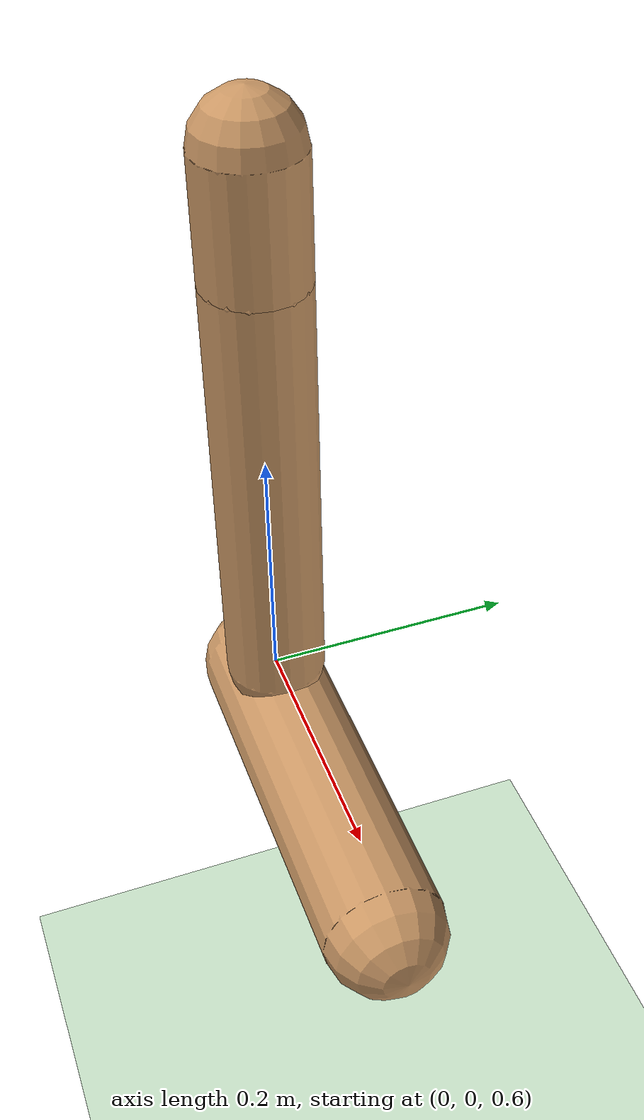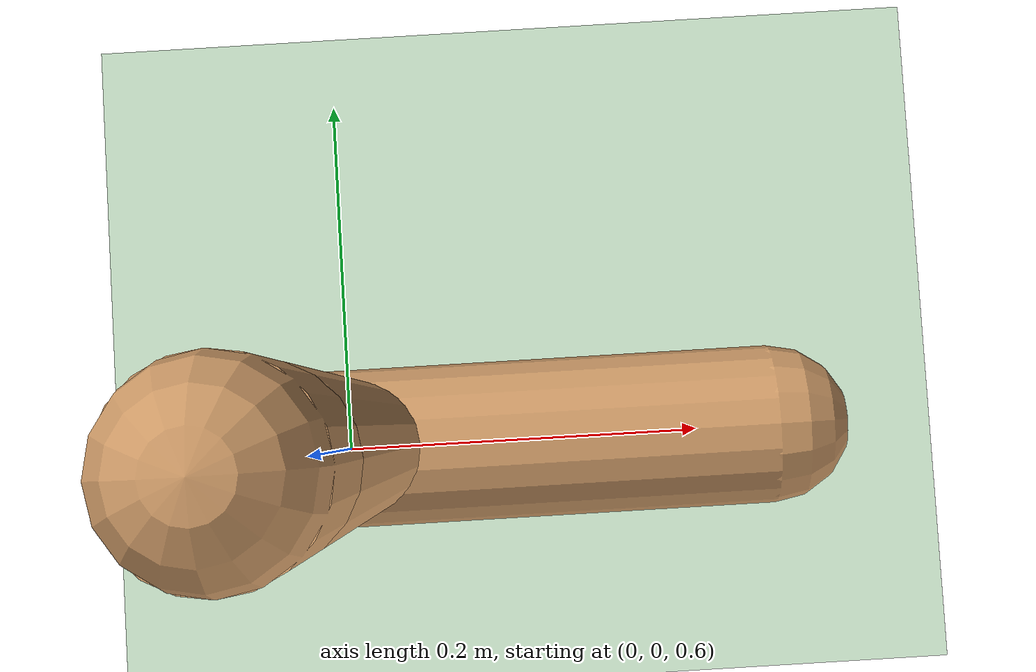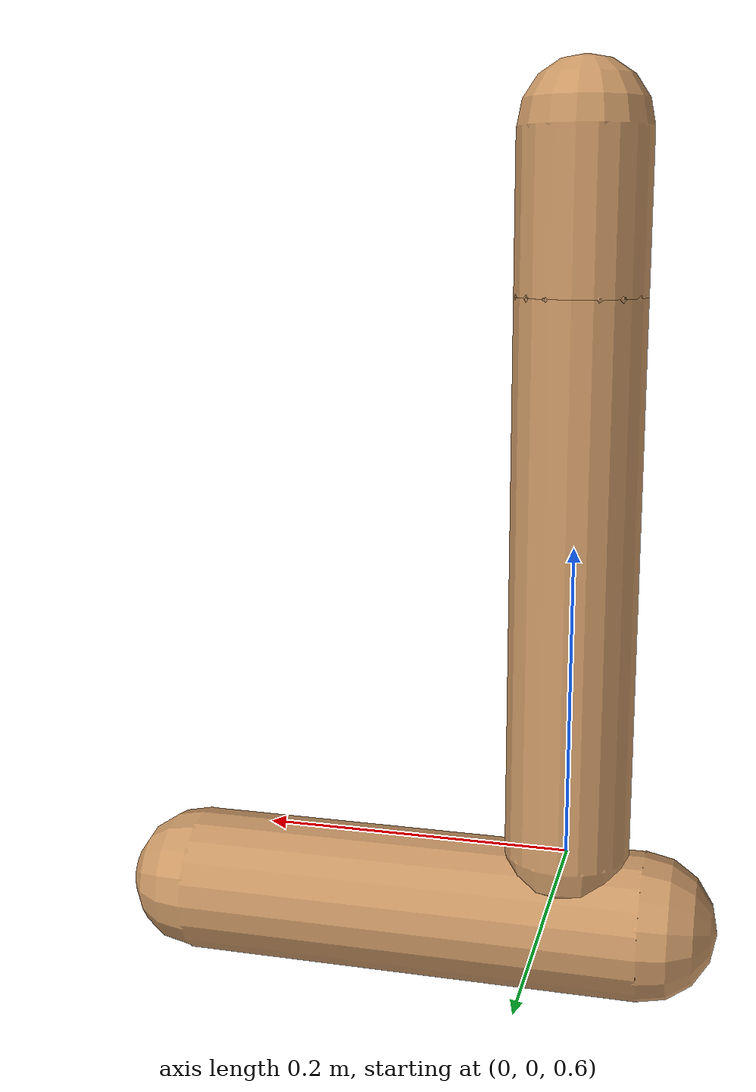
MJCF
<!-- ToDo - verify the torque control input -->
<mujoco model="hopper">
	<compiler angle="degree" inertiafromgeom="true" />
	<default>
		<joint armature="1" damping="1" limited="true" />
		<geom conaffinity="1" condim="1" contype="1" margin="0.001" material="geom" rgba="0.8 0.6 .4 1" solimp=".8 .8 .01" solref=".02 1" />
		<motor ctrllimited="true" ctrlrange="-.4 .4" />
	</default>
	<option integrator="RK4" timestep="0.006" />
	<visual>
		<map znear="0.02" />
	</visual>
	<worldbody>
		<light cutoff="100" diffuse="1 1 1" dir="-0 0 -1.3" directional="true" exponent="1" pos="0 0 1.3" specular=".1 .1 .1" />
		<geom conaffinity="1" condim="3" name="floor" pos="0 0 0" rgba="0.8 0.9 0.8 1" size="20 20 .125" type="plane" material="MatPlane" />
		<body name="thigh" pos="0 0 1">
			<camera name="track" mode="trackcom" pos="0 -3 -0.25" xyaxes="1 0 0 0 0 1" />
			<!-- rootx, rooty, rootz -->
			<joint armature="0" axis="1 0 0" damping="0" limited="false" name="rootx" pos="0 0 0.04795" stiffness="0" type="slide" />
			<joint armature="0" axis="0 0 1" damping="0" limited="false" name="rootz" pos="0 0 0.04795" ref="1.25" stiffness="0" type="slide" />
			<joint armature="0" axis="0 1 0" damping="0" limited="false" name="rooty" pos="0 0 0.04795" stiffness="0" type="hinge" />

			<!-- Thigh definition -->
			<geom friction="0.9" name="thigh_geom" size="0.040 0.04795" mass="0.9372" type="capsule" />
			<inertial mass="0.9372" pos="0.00673 -0.00218 0.02905" diaginertia="0.001723 0.002207 0.002326" />
			<site name="force_site_x" pos="0 0 0.04795" size="0.01" type="sphere" rgba="0.7 0.2 0.9 0.5" />

			<!-- Thigh IMU Definition -->
			<site name="thigh_imu" pos="0 0 0.006049999999999997" size="0.01" type="sphere" rgba="0.3 0.2 0.2 0.5" />

			<!-- Knee Definition -->
			<body name="knee" pos="0 0 -0.04795">
				<joint axis="0 -1 0" name="knee_joint" pos="0 0 0" range="-95 0" type="hinge" />
				<!-- Shank definition - note the value is half the length-->
				<geom friction="0.9" pos="0 0 -0.1755" mass="3.171" name="leg_geom" size="0.040 0.1755" type="capsule" />
				<inertial mass="3.171" pos="-0.00719 0.00339 -0.1706" diaginertia="0.00607 0.02592 0.02626" />

				<!-- Foot Definition (Shank length used here for placement) -->
				<body name="foot" pos="0.1 0 -0.351" quat="0.70710678118654757 0 -0.70710678118654746 0">
					<joint axis="0 -1 0" name="foot_joint" pos="0 0 0.085" range="-40 40" type="hinge" />
					<geom friction="0.9" pos="-0.0475 0 0" mass="0.7453112309" name="foot_geom" size="0.0475 0.15" type="capsule" />
					<inertial mass="0.7453112309" pos="0.02751 -0.00002 -0.40911" diaginertia="0.0003585 0.0024096 0.0024149" />

					<!-- Load Cell -->
					<site name="foot_load_sensor" pos="-0.025 0 0.085" size="0.01" type="sphere" rgba="0 0.5 0 0.5" />
					<!-- Foot IMU -->
					<site name="foot_imu" pos="-0.025 0 -0.0049999999999999906" size="0.01" type="sphere" rgba="0 1 1 0.5" />
				</body>
			</body>
		</body>
	</worldbody>
	<actuator>
		<motor joint="rootx" name="linear_x" ctrlrange="-1.0 1.0" gear="100.0" />
		<motor joint="rootz" name="linear_z" ctrlrange="-1.0 1.0" gear="100.0" />
		<!-- Check the torque value -->
		<motor ctrllimited="true" name="thigh_torque" ctrlrange="-1.0 1.0" gear="30" joint="rooty" />

		<!-- Can be used to control knee and foot joint with torque if needed -->
	</actuator>
	<sensor>
		<jointpos joint="rootx" name="sensor_x_position" />
		<jointpos joint="rooty" name="sensor_y_position" />
		<jointpos joint="rootz" name="sensor_z_position" />
		<force name="load_sensor" site="foot_load_sensor" />
		<gyro name="foot_gyro_sensor" site="foot_imu" />
		<accelerometer name="foot_accel_sensor" site="foot_imu" />
		<gyro name="thigh_gyro_sensor" site="thigh_imu" />
		<accelerometer name="thigh_accel_sensor" site="thigh_imu" />
		<force site="force_site_x" name="sensor_x_force" />
	</sensor>
	<asset>
		<texture type="skybox" builtin="gradient" rgb1=".4 .6 .8" rgb2="0 0 0" width="100" height="100" markrgb="1 1 1"/>
		<texture builtin="flat" height="1278" mark="cross" markrgb="1 1 1" name="texgeom" random="0.01" rgb1="0.8 0.6 0.4" rgb2="0.8 0.6 0.4" type="cube" width="127" />
		<texture builtin="checker" height="100" name="texplane" rgb1=".1 .2 .3" rgb2=".2 .3 .4" type="2d" width="100" />
		<material name="MatPlane" reflectance="0.2" shininess="1" specular="1" texrepeat="60 60" texture="texplane" />
		<material name="geom" texture="texgeom" texuniform="true" />
	</asset>
</mujoco>
